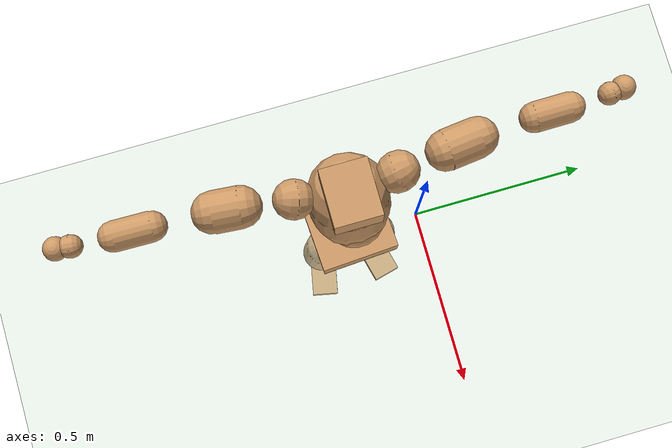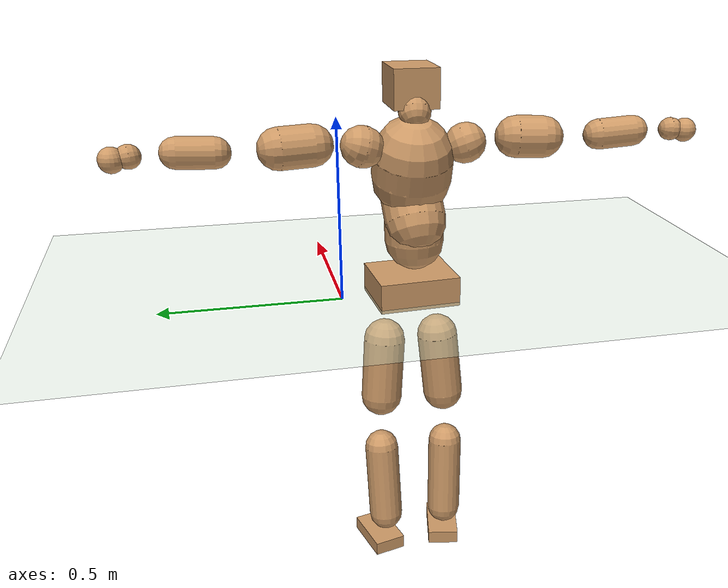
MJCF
<mujoco model="humanoid">
  <compiler coordinate="local" angle="radian"/>
  <default>
    <joint damping="0.0" armature="0.01" stiffness="0.0" limited="true"/>
    <geom conaffinity="1" condim="3" contype="7" margin="0.001" rgba="0.8 0.6 .4 1"/>
  </default>
  <asset>
    <texture type="skybox" builtin="gradient" rgb1=".4 .5 .6" rgb2="0 0 0" width="100" height="100"/>
    <texture builtin="flat" height="1278" mark="cross" markrgb="1 1 1" name="texgeom" random="0.01" rgb1="0.8 0.6 0.4" rgb2="0.8 0.6 0.4" type="cube" width="127"/>
    <texture builtin="checker" height="100" name="texplane" rgb1="0 0 0" rgb2="0.8 0.8 0.8" type="2d" width="100"/>
    <material name="MatPlane" reflectance="0.5" shininess="1" specular="1" texrepeat="60 60" texture="texplane"/>
    <material name="geom" texture="texgeom" texuniform="true"/>
  </asset>
  <worldbody>
    <light cutoff="100" diffuse="1 1 1" dir="-0 0 -1.3" directional="true" exponent="1" pos="0 0 1.3" specular=".1 .1 .1"/>
    <geom conaffinity="1" condim="3" name="floor" pos="0 0 0" rgba="0.8 0.9 0.8 1" size="100 100 .2" type="plane" material="MatPlane"/>
    <body name="Pelvis" pos="-0.0025 -0.196 0.0415">
      <freejoint name="Pelvis"/>
      <geom type="box" contype="1" conaffinity="1" density="5359.374606" pos="-0.0038 -0.0002 -0.0125" size="0.0949 0.112 0.0407" quat="0.9995 0.0000 0.0000 0.0306" name="Pelvis"/>
      <body name="L_Hip" pos="0.0034 0.0716 -0.0876">
        <joint name="L_Hip_x" type="hinge" pos="0 0 0" axis="1 0 0" stiffness="1600" damping="160" armature="0.02" range="-180.0000 180.0000"/>
        <joint name="L_Hip_y" type="hinge" pos="0 0 0" axis="0 1 0" stiffness="1600" damping="160" armature="0.02" range="-180.0000 180.0000"/>
        <joint name="L_Hip_z" type="hinge" pos="0 0 0" axis="0 0 1" stiffness="1600" damping="160" armature="0.02" range="-180.0000 180.0000"/>
        <geom type="capsule" contype="1" conaffinity="1" density="2040.816327" size="0.0586" fromto="-0.0044 0.0065 -0.0882 -0.0133 0.0194 -0.2648" name="L_Hip"/>
        <body name="L_Knee" pos="-0.0177 0.0259 -0.353">
          <joint name="L_Knee_x" type="hinge" pos="0 0 0" axis="1 0 0" stiffness="1600" damping="160" armature="0.02" range="-180.0000 180.0000"/>
          <joint name="L_Knee_y" type="hinge" pos="0 0 0" axis="0 1 0" stiffness="1600" damping="160" armature="0.02" range="-180.0000 180.0000"/>
          <joint name="L_Knee_z" type="hinge" pos="0 0 0" axis="0 0 1" stiffness="1600" damping="160" armature="0.02" range="-180.0000 180.0000"/>
          <geom type="capsule" contype="1" conaffinity="1" density="1234.567901" size="0.0488" fromto="-0.0085 -0.0020 -0.0783 -0.0328 -0.0078 -0.3019" name="L_Knee"/>
          <body name="L_Ankle" pos="-0.0413 -0.0098 -0.3802">
            <joint name="L_Ankle_x" type="hinge" pos="0 0 0" axis="1 0 0" stiffness="1600" damping="160" armature="0.02" range="-180.0000 180.0000"/>
            <joint name="L_Ankle_y" type="hinge" pos="0 0 0" axis="0 1 0" stiffness="1600" damping="160" armature="0.02" range="-180.0000 180.0000"/>
            <joint name="L_Ankle_z" type="hinge" pos="0 0 0" axis="0 0 1" stiffness="1600" damping="160" armature="0.02" range="-180.0000 180.0000"/>
            <geom type="box" contype="1" conaffinity="1" density="999.999983" pos="0.0539 0.0133 -0.0277" size="0.077 0.0462 0.0197" quat="0.9926 0.0000 0.0000 0.1210" name="L_Ankle"/>
            <body name="L_Toe" pos="0.1078 0.0267 -0.0553">
              <joint name="L_Toe_x" type="hinge" pos="0 0 0" axis="1 0 0" stiffness="1000" damping="100" armature="0.02" range="-180.0000 180.0000"/>
              <joint name="L_Toe_y" type="hinge" pos="0 0 0" axis="0 1 0" stiffness="1000" damping="100" armature="0.02" range="-180.0000 180.0000"/>
              <joint name="L_Toe_z" type="hinge" pos="0 0 0" axis="0 0 1" stiffness="1000" damping="100" armature="0.02" range="-180.0000 180.0000"/>
              <geom type="box" contype="1" conaffinity="1" density="7941324.553707" pos="0.0000 0.0000 0.0278" size="0.001 0.0023 0.001" quat="0.9918 0.0000 0.0000 0.1274" name="L_Toe"/>
            </body>
          </body>
        </body>
      </body>
      <body name="R_Hip" pos="0.0068 -0.0706 -0.0893">
        <joint name="R_Hip_x" type="hinge" pos="0 0 0" axis="1 0 0" stiffness="1600" damping="160" armature="0.02" range="-180.0000 180.0000"/>
        <joint name="R_Hip_y" type="hinge" pos="0 0 0" axis="0 1 0" stiffness="1600" damping="160" armature="0.02" range="-180.0000 180.0000"/>
        <joint name="R_Hip_z" type="hinge" pos="0 0 0" axis="0 0 1" stiffness="1600" damping="160" armature="0.02" range="-180.0000 180.0000"/>
        <geom type="capsule" contype="1" conaffinity="1" density="2040.816327" size="0.0578" fromto="-0.0044 -0.0081 -0.0873 -0.0136 -0.0251 -0.2698" name="R_Hip"/>
        <body name="R_Knee" pos="-0.0181 -0.0332 -0.3571">
          <joint name="R_Knee_x" type="hinge" pos="0 0 0" axis="1 0 0" stiffness="1600" damping="160" armature="0.02" range="-180.0000 180.0000"/>
          <joint name="R_Knee_y" type="hinge" pos="0 0 0" axis="0 1 0" stiffness="1600" damping="160" armature="0.02" range="-180.0000 180.0000"/>
          <joint name="R_Knee_z" type="hinge" pos="0 0 0" axis="0 0 1" stiffness="1600" damping="160" armature="0.02" range="-180.0000 180.0000"/>
          <geom type="capsule" contype="1" conaffinity="1" density="1234.567901" size="0.0489" fromto="-0.0080 0.0025 -0.0785 -0.0308 0.0096 -0.3029" name="R_Knee"/>
          <body name="R_Ankle" pos="-0.0388 0.0121 -0.3814">
            <joint name="R_Ankle_x" type="hinge" pos="0 0 0" axis="1 0 0" stiffness="1600" damping="160" armature="0.02" range="-180.0000 180.0000"/>
            <joint name="R_Ankle_y" type="hinge" pos="0 0 0" axis="0 1 0" stiffness="1600" damping="160" armature="0.02" range="-180.0000 180.0000"/>
            <joint name="R_Ankle_z" type="hinge" pos="0 0 0" axis="0 0 1" stiffness="1600" damping="160" armature="0.02" range="-180.0000 180.0000"/>
            <geom type="box" contype="1" conaffinity="1" density="999.999945" pos="0.0558 -0.0114 -0.0234" size="0.0789 0.045 0.0196" quat="0.9949 0.0000 0.0000 -0.1009" name="R_Ankle"/>
            <body name="R_Toe" pos="0.1117 -0.0229 -0.0467">
              <joint name="R_Toe_x" type="hinge" pos="0 0 0" axis="1 0 0" stiffness="1000" damping="100" armature="0.02" range="-180.0000 180.0000"/>
              <joint name="R_Toe_y" type="hinge" pos="0 0 0" axis="0 1 0" stiffness="1000" damping="100" armature="0.02" range="-180.0000 180.0000"/>
              <joint name="R_Toe_z" type="hinge" pos="0 0 0" axis="0 0 1" stiffness="1000" damping="100" armature="0.02" range="-180.0000 180.0000"/>
              <geom type="box" contype="1" conaffinity="1" density="7822151.648067" pos="0.0000 0.0000 0.0251" size="0.0009 0.0023 0.0011" quat="0.9959 0.0000 0.0000 -0.0907" name="R_Toe"/>
            </body>
          </body>
        </body>
      </body>
      <body name="Torso" pos="-0.0329 -0.0024 0.1017">
        <joint name="Torso_x" type="hinge" pos="0 0 0" axis="1 0 0" stiffness="2000" damping="200" armature="0.02" range="-180.0000 180.0000"/>
        <joint name="Torso_y" type="hinge" pos="0 0 0" axis="0 1 0" stiffness="2000" damping="200" armature="0.02" range="-180.0000 180.0000"/>
        <joint name="Torso_z" type="hinge" pos="0 0 0" axis="0 0 1" stiffness="2000" damping="200" armature="0.02" range="-180.0000 180.0000"/>
        <geom type="capsule" contype="1" conaffinity="1" density="2040.816327" size="0.0806" fromto="-0.0022 0.0025 0.0806 -0.0007 0.0008 0.0269" name="Torso"/>
        <body name="Spine" pos="-0.0029 0.0033 0.1075">
          <joint name="Spine_x" type="hinge" pos="0 0 0" axis="1 0 0" stiffness="2000" damping="200" armature="0.02" range="-180.0000 180.0000"/>
          <joint name="Spine_y" type="hinge" pos="0 0 0" axis="0 1 0" stiffness="2000" damping="200" armature="0.02" range="-180.0000 180.0000"/>
          <joint name="Spine_z" type="hinge" pos="0 0 0" axis="0 0 1" stiffness="2000" damping="200" armature="0.02" range="-180.0000 180.0000"/>
          <geom type="capsule" contype="1" conaffinity="1" density="2040.816327" size="0.0826" fromto="0.0450 0.0051 0.0691 -0.0151 -0.0017 -0.0232" name="Spine"/>
          <body name="Chest" pos="0.0299 0.0034 0.0459">
            <joint name="Chest_x" type="hinge" pos="0 0 0" axis="1 0 0" stiffness="2000" damping="200" armature="0.02" range="-180.0000 180.0000"/>
            <joint name="Chest_y" type="hinge" pos="0 0 0" axis="0 1 0" stiffness="2000" damping="200" armature="0.02" range="-180.0000 180.0000"/>
            <joint name="Chest_z" type="hinge" pos="0 0 0" axis="0 0 1" stiffness="2000" damping="200" armature="0.02" range="-180.0000 180.0000"/>
            <geom type="capsule" contype="1" conaffinity="1" density="2040.816327" size="0.1068" fromto="-0.0325 -0.0007 0.1017 -0.0143 -0.0003 0.0447" name="Chest"/>
            <body name="Neck" pos="-0.0591 -0.0018 0.2003">
              <joint name="Neck_x" type="hinge" pos="0 0 0" axis="1 0 0" stiffness="1000" damping="100" armature="0.02" range="-180.0000 180.0000"/>
              <joint name="Neck_y" type="hinge" pos="0 0 0" axis="0 1 0" stiffness="1000" damping="100" armature="0.02" range="-180.0000 180.0000"/>
              <joint name="Neck_z" type="hinge" pos="0 0 0" axis="0 0 1" stiffness="1000" damping="100" armature="0.02" range="-180.0000 180.0000"/>
              <geom type="capsule" contype="1" conaffinity="1" density="1000" size="0.0428" fromto="0.0277 -0.0013 0.0326 0.0152 -0.0007 0.0178" name="Neck"/>
              <body name="Head" pos="0.0429 -0.002 0.0504">
                <joint name="Head_x" type="hinge" pos="0 0 0" axis="1 0 0" stiffness="1000" damping="100" armature="0.02" range="-180.0000 180.0000"/>
                <joint name="Head_y" type="hinge" pos="0 0 0" axis="0 1 0" stiffness="1000" damping="100" armature="0.02" range="-180.0000 180.0000"/>
                <joint name="Head_z" type="hinge" pos="0 0 0" axis="0 0 1" stiffness="1000" damping="100" armature="0.02" range="-180.0000 180.0000"/>
                <geom type="box" contype="1" conaffinity="1" density="2250.000144" pos="0.0224 0.0000 0.0262" size="0.072 0.0601 0.0512" quat="1.0000 0.0000 0.0000 0.0000" name="Head"/>
              </body>
            </body>
            <body name="L_Thorax" pos="-0.0392 0.0879 0.1206">
              <joint name="L_Thorax_x" type="hinge" pos="0 0 0" axis="1 0 0" stiffness="1000" damping="100" armature="0.02" range="-180.0000 180.0000"/>
              <joint name="L_Thorax_y" type="hinge" pos="0 0 0" axis="0 1 0" stiffness="1000" damping="100" armature="0.02" range="-180.0000 180.0000"/>
              <joint name="L_Thorax_z" type="hinge" pos="0 0 0" axis="0 0 1" stiffness="1000" damping="100" armature="0.02" range="-180.0000 180.0000"/>
              <geom type="capsule" contype="1" conaffinity="1" density="1000" size="0.0536" fromto="-0.0077 0.0502 0.0170 -0.0066 0.0429 0.0146" name="L_Thorax"/>
              <body name="L_Shoulder" pos="-0.0142 0.0932 0.0316">
                <joint name="L_Shoulder_x" type="hinge" pos="0 0 0" axis="1 0 0" stiffness="1000" damping="100" armature="0.02" range="-720.0000 720.0000"/>
                <joint name="L_Shoulder_y" type="hinge" pos="0 0 0" axis="0 1 0" stiffness="1000" damping="100" armature="0.02" range="-720.0000 720.0000"/>
                <joint name="L_Shoulder_z" type="hinge" pos="0 0 0" axis="0 0 1" stiffness="1000" damping="100" armature="0.02" range="-720.0000 720.0000"/>
                <geom type="capsule" contype="1" conaffinity="1" density="1000" size="0.0536" fromto="-0.0098 0.0830 -0.0021 -0.0200 0.1686 -0.0042" name="L_Shoulder"/>
                <body name="L_Elbow" pos="-0.0299 0.2516 -0.0062">
                  <joint name="L_Elbow_x" type="hinge" pos="0 0 0" axis="1 0 0" stiffness="1000" damping="100" armature="0.02" range="-720.0000 720.0000"/>
                  <joint name="L_Elbow_y" type="hinge" pos="0 0 0" axis="0 1 0" stiffness="1000" damping="100" armature="0.02" range="-720.0000 720.0000"/>
                  <joint name="L_Elbow_z" type="hinge" pos="0 0 0" axis="0 0 1" stiffness="1000" damping="100" armature="0.02" range="-720.0000 720.0000"/>
                  <geom type="capsule" contype="1" conaffinity="1" density="1000" size="0.0396" fromto="-0.0001 0.0695 0.0029 -0.0001 0.1617 0.0068" name="L_Elbow"/>
                  <body name="L_Wrist" pos="-0.0002 0.2312 0.0097">
                    <joint name="L_Wrist_x" type="hinge" pos="0 0 0" axis="1 0 0" stiffness="600" damping="60" armature="0.02" range="-180.0000 180.0000"/>
                    <joint name="L_Wrist_y" type="hinge" pos="0 0 0" axis="0 1 0" stiffness="600" damping="60" armature="0.02" range="-180.0000 180.0000"/>
                    <joint name="L_Wrist_z" type="hinge" pos="0 0 0" axis="0 0 1" stiffness="600" damping="60" armature="0.02" range="-180.0000 180.0000"/>
                    <geom type="capsule" contype="1" conaffinity="1" density="1000" size="0.0297" fromto="-0.0062 0.0380 -0.0045 -0.0066 0.0399 -0.0047" name="L_Wrist"/>
                    <body name="L_Hand" pos="-0.0128 0.0779 -0.0092">
                      <joint name="L_Hand_x" type="hinge" pos="0 0 0" axis="1 0 0" stiffness="600" damping="60" armature="0.02" range="-180.0000 180.0000"/>
                      <joint name="L_Hand_y" type="hinge" pos="0 0 0" axis="0 1 0" stiffness="600" damping="60" armature="0.02" range="-180.0000 180.0000"/>
                      <joint name="L_Hand_z" type="hinge" pos="0 0 0" axis="0 0 1" stiffness="600" damping="60" armature="0.02" range="-180.0000 180.0000"/>
                      <geom type="sphere" contype="1" conaffinity="1" density="1000" size="0.0315" pos="0.0000 0.0000 0.0000" name="L_Hand"/>
                    </body>
                  </body>
                </body>
              </body>
            </body>
            <body name="R_Thorax" pos="-0.0421 -0.089 0.1185">
              <joint name="R_Thorax_x" type="hinge" pos="0 0 0" axis="1 0 0" stiffness="1000" damping="100" armature="0.02" range="-180.0000 180.0000"/>
              <joint name="R_Thorax_y" type="hinge" pos="0 0 0" axis="0 1 0" stiffness="1000" damping="100" armature="0.02" range="-180.0000 180.0000"/>
              <joint name="R_Thorax_z" type="hinge" pos="0 0 0" axis="0 0 1" stiffness="1000" damping="100" armature="0.02" range="-180.0000 180.0000"/>
              <geom type="capsule" contype="1" conaffinity="1" density="1000" size="0.0526" fromto="-0.0085 -0.0492 0.0165 -0.0079 -0.0456 0.0152" name="R_Thorax"/>
              <body name="R_Shoulder" pos="-0.0164 -0.0948 0.0317">
                <joint name="R_Shoulder_x" type="hinge" pos="0 0 0" axis="1 0 0" stiffness="1000" damping="100" armature="0.02" range="-720.0000 720.0000"/>
                <joint name="R_Shoulder_y" type="hinge" pos="0 0 0" axis="0 1 0" stiffness="1000" damping="100" armature="0.02" range="-720.0000 720.0000"/>
                <joint name="R_Shoulder_z" type="hinge" pos="0 0 0" axis="0 0 1" stiffness="1000" damping="100" armature="0.02" range="-720.0000 720.0000"/>
                <geom type="capsule" contype="1" conaffinity="1" density="1000" size="0.055" fromto="-0.0073 -0.0846 -0.0031 -0.0134 -0.1557 -0.0056" name="R_Shoulder"/>
                <body name="R_Elbow" pos="-0.0207 -0.2403 -0.0087">
                  <joint name="R_Elbow_x" type="hinge" pos="0 0 0" axis="1 0 0" stiffness="1000" damping="100" armature="0.02" range="-720.0000 720.0000"/>
                  <joint name="R_Elbow_y" type="hinge" pos="0 0 0" axis="0 1 0" stiffness="1000" damping="100" armature="0.02" range="-720.0000 720.0000"/>
                  <joint name="R_Elbow_z" type="hinge" pos="0 0 0" axis="0 0 1" stiffness="1000" damping="100" armature="0.02" range="-720.0000 720.0000"/>
                  <geom type="capsule" contype="1" conaffinity="1" density="1000" size="0.04" fromto="-0.0003 -0.0699 0.0040 -0.0007 -0.1664 0.0095" name="R_Elbow"/>
                  <body name="R_Wrist" pos="-0.001 -0.2362 0.0134">
                    <joint name="R_Wrist_x" type="hinge" pos="0 0 0" axis="1 0 0" stiffness="600" damping="60" armature="0.02" range="-180.0000 180.0000"/>
                    <joint name="R_Wrist_y" type="hinge" pos="0 0 0" axis="0 1 0" stiffness="600" damping="60" armature="0.02" range="-180.0000 180.0000"/>
                    <joint name="R_Wrist_z" type="hinge" pos="0 0 0" axis="0 0 1" stiffness="600" damping="60" armature="0.02" range="-180.0000 180.0000"/>
                    <geom type="capsule" contype="1" conaffinity="1" density="1000" size="0.0302" fromto="-0.0049 -0.0377 -0.0034 -0.0051 -0.0397 -0.0035" name="R_Wrist"/>
                    <body name="R_Hand" pos="-0.01 -0.0774 -0.0069">
                      <joint name="R_Hand_x" type="hinge" pos="0 0 0" axis="1 0 0" stiffness="600" damping="60" armature="0.02" range="-180.0000 180.0000"/>
                      <joint name="R_Hand_y" type="hinge" pos="0 0 0" axis="0 1 0" stiffness="600" damping="60" armature="0.02" range="-180.0000 180.0000"/>
                      <joint name="R_Hand_z" type="hinge" pos="0 0 0" axis="0 0 1" stiffness="600" damping="60" armature="0.02" range="-180.0000 180.0000"/>
                      <geom type="sphere" contype="1" conaffinity="1" density="1000" size="0.0313" pos="0.0000 0.0000 0.0000" name="R_Hand"/>
                    </body>
                  </body>
                </body>
              </body>
            </body>
          </body>
        </body>
      </body>
    </body>
  </worldbody>
  <actuator>
    <motor name="L_Hip_x" joint="L_Hip_x" gear="500"/>
    <motor name="L_Hip_y" joint="L_Hip_y" gear="500"/>
    <motor name="L_Hip_z" joint="L_Hip_z" gear="500"/>
    <motor name="L_Knee_x" joint="L_Knee_x" gear="500"/>
    <motor name="L_Knee_y" joint="L_Knee_y" gear="500"/>
    <motor name="L_Knee_z" joint="L_Knee_z" gear="500"/>
    <motor name="L_Ankle_x" joint="L_Ankle_x" gear="500"/>
    <motor name="L_Ankle_y" joint="L_Ankle_y" gear="500"/>
    <motor name="L_Ankle_z" joint="L_Ankle_z" gear="500"/>
    <motor name="L_Toe_x" joint="L_Toe_x" gear="500"/>
    <motor name="L_Toe_y" joint="L_Toe_y" gear="500"/>
    <motor name="L_Toe_z" joint="L_Toe_z" gear="500"/>
    <motor name="R_Hip_x" joint="R_Hip_x" gear="500"/>
    <motor name="R_Hip_y" joint="R_Hip_y" gear="500"/>
    <motor name="R_Hip_z" joint="R_Hip_z" gear="500"/>
    <motor name="R_Knee_x" joint="R_Knee_x" gear="500"/>
    <motor name="R_Knee_y" joint="R_Knee_y" gear="500"/>
    <motor name="R_Knee_z" joint="R_Knee_z" gear="500"/>
    <motor name="R_Ankle_x" joint="R_Ankle_x" gear="500"/>
    <motor name="R_Ankle_y" joint="R_Ankle_y" gear="500"/>
    <motor name="R_Ankle_z" joint="R_Ankle_z" gear="500"/>
    <motor name="R_Toe_x" joint="R_Toe_x" gear="500"/>
    <motor name="R_Toe_y" joint="R_Toe_y" gear="500"/>
    <motor name="R_Toe_z" joint="R_Toe_z" gear="500"/>
    <motor name="Torso_x" joint="Torso_x" gear="500"/>
    <motor name="Torso_y" joint="Torso_y" gear="500"/>
    <motor name="Torso_z" joint="Torso_z" gear="500"/>
    <motor name="Spine_x" joint="Spine_x" gear="500"/>
    <motor name="Spine_y" joint="Spine_y" gear="500"/>
    <motor name="Spine_z" joint="Spine_z" gear="500"/>
    <motor name="Chest_x" joint="Chest_x" gear="500"/>
    <motor name="Chest_y" joint="Chest_y" gear="500"/>
    <motor name="Chest_z" joint="Chest_z" gear="500"/>
    <motor name="Neck_x" joint="Neck_x" gear="500"/>
    <motor name="Neck_y" joint="Neck_y" gear="500"/>
    <motor name="Neck_z" joint="Neck_z" gear="500"/>
    <motor name="Head_x" joint="Head_x" gear="500"/>
    <motor name="Head_y" joint="Head_y" gear="500"/>
    <motor name="Head_z" joint="Head_z" gear="500"/>
    <motor name="L_Thorax_x" joint="L_Thorax_x" gear="500"/>
    <motor name="L_Thorax_y" joint="L_Thorax_y" gear="500"/>
    <motor name="L_Thorax_z" joint="L_Thorax_z" gear="500"/>
    <motor name="L_Shoulder_x" joint="L_Shoulder_x" gear="500"/>
    <motor name="L_Shoulder_y" joint="L_Shoulder_y" gear="500"/>
    <motor name="L_Shoulder_z" joint="L_Shoulder_z" gear="500"/>
    <motor name="L_Elbow_x" joint="L_Elbow_x" gear="500"/>
    <motor name="L_Elbow_y" joint="L_Elbow_y" gear="500"/>
    <motor name="L_Elbow_z" joint="L_Elbow_z" gear="500"/>
    <motor name="L_Wrist_x" joint="L_Wrist_x" gear="500"/>
    <motor name="L_Wrist_y" joint="L_Wrist_y" gear="500"/>
    <motor name="L_Wrist_z" joint="L_Wrist_z" gear="500"/>
    <motor name="L_Hand_x" joint="L_Hand_x" gear="500"/>
    <motor name="L_Hand_y" joint="L_Hand_y" gear="500"/>
    <motor name="L_Hand_z" joint="L_Hand_z" gear="500"/>
    <motor name="R_Thorax_x" joint="R_Thorax_x" gear="500"/>
    <motor name="R_Thorax_y" joint="R_Thorax_y" gear="500"/>
    <motor name="R_Thorax_z" joint="R_Thorax_z" gear="500"/>
    <motor name="R_Shoulder_x" joint="R_Shoulder_x" gear="500"/>
    <motor name="R_Shoulder_y" joint="R_Shoulder_y" gear="500"/>
    <motor name="R_Shoulder_z" joint="R_Shoulder_z" gear="500"/>
    <motor name="R_Elbow_x" joint="R_Elbow_x" gear="500"/>
    <motor name="R_Elbow_y" joint="R_Elbow_y" gear="500"/>
    <motor name="R_Elbow_z" joint="R_Elbow_z" gear="500"/>
    <motor name="R_Wrist_x" joint="R_Wrist_x" gear="500"/>
    <motor name="R_Wrist_y" joint="R_Wrist_y" gear="500"/>
    <motor name="R_Wrist_z" joint="R_Wrist_z" gear="500"/>
    <motor name="R_Hand_x" joint="R_Hand_x" gear="500"/>
    <motor name="R_Hand_y" joint="R_Hand_y" gear="500"/>
    <motor name="R_Hand_z" joint="R_Hand_z" gear="500"/>
  </actuator>
  <contact>
    <exclude body1="Torso" body2="Chest"/>
    <exclude body1="Head" body2="Chest"/>
    <exclude body1="R_Knee" body2="R_Toe"/>
    <exclude body1="R_Knee" body2="L_Ankle"/>
    <exclude body1="R_Knee" body2="L_Toe"/>
    <exclude body1="L_Knee" body2="L_Toe"/>
    <exclude body1="L_Knee" body2="R_Ankle"/>
    <exclude body1="L_Knee" body2="R_Toe"/>
    <exclude body1="L_Shoulder" body2="Chest"/>
    <exclude body1="R_Shoulder" body2="Chest"/>
  </contact>
  <sensor/>
  <size njmax="700" nconmax="700"/>
</mujoco>
